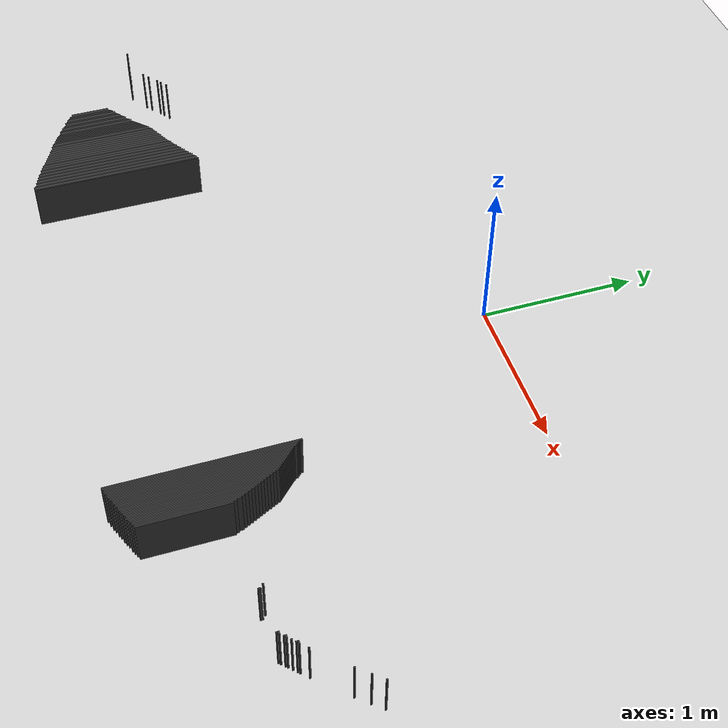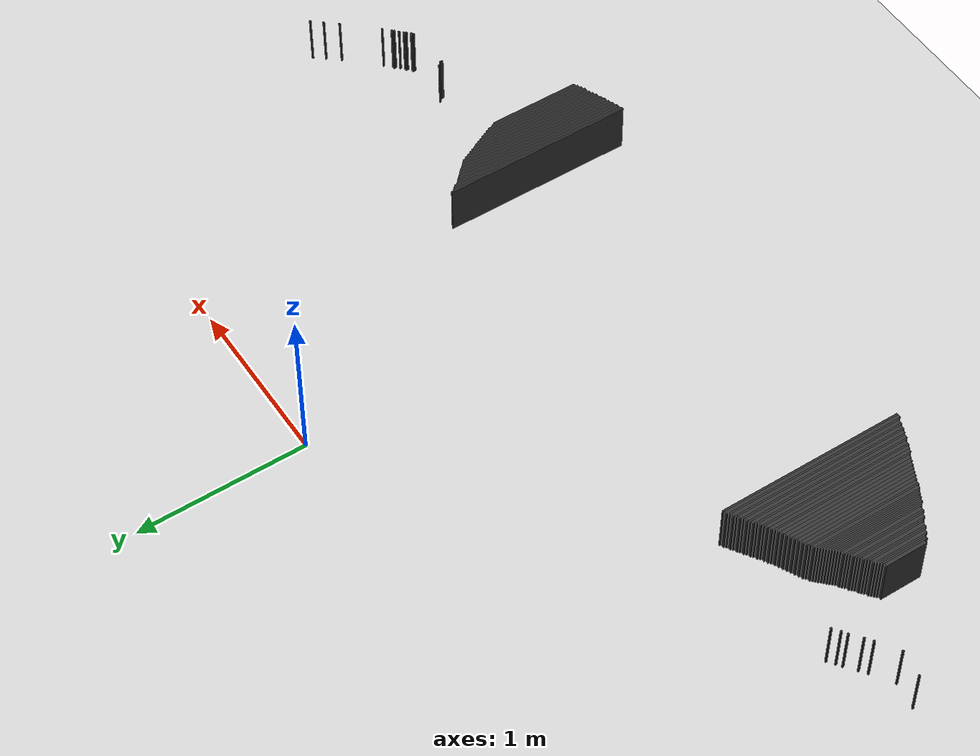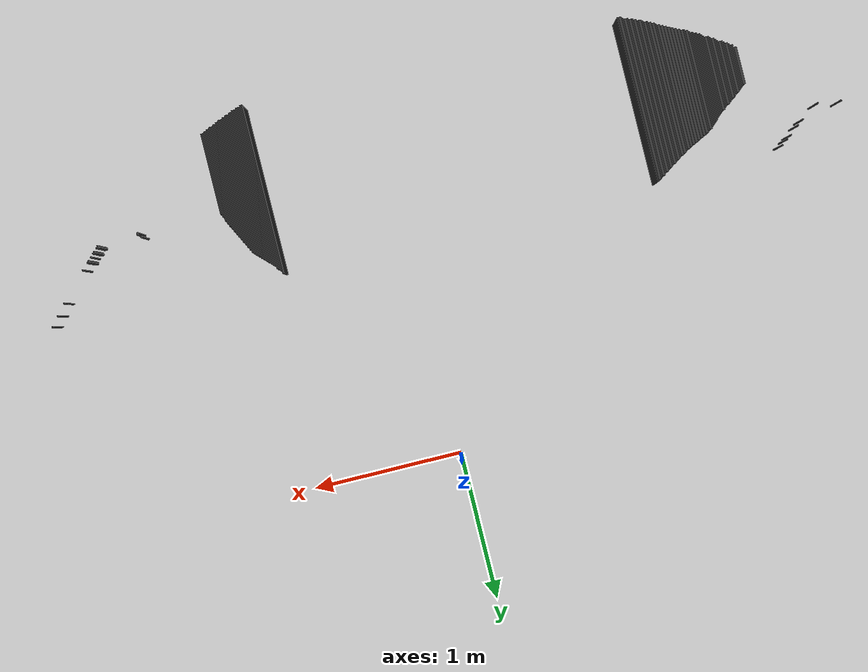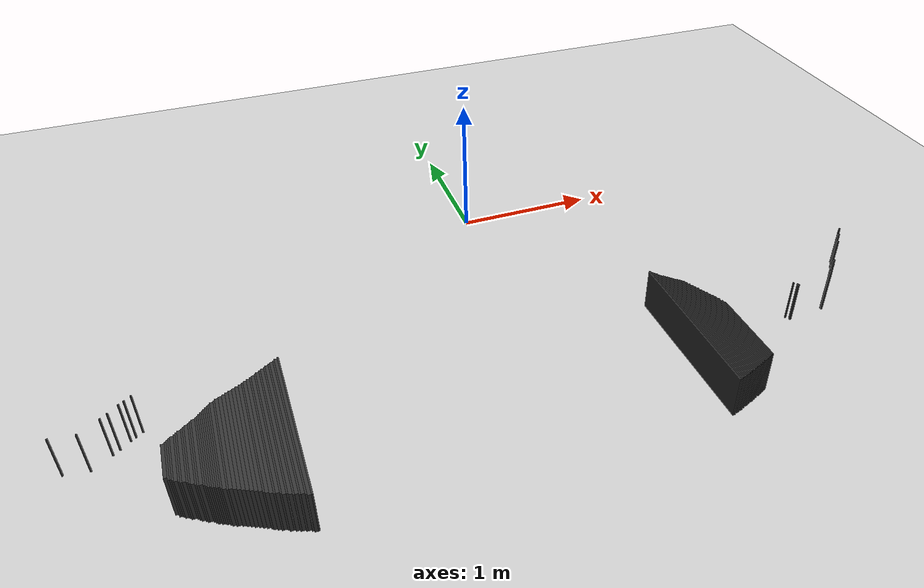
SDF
<sdf version="1.7">
 <world name="mapa_mundo">
  <model name="ground_plane">
   <static>true</static>
   <link name="link">
    <collision name="collision">
     <geometry><plane><normal>0 0 1</normal><size>10 10</size></plane></geometry>
     <surface><friction><ode><mu>100</mu><mu2>50</mu2></ode></friction></surface>
    </collision>
    <visual name="visual">
     <geometry><plane><normal>0 0 1</normal><size>10 10</size></plane></geometry>
     <material>
      <ambient>0.8 0.8 0.8 1</ambient>
      <diffuse>0.8 0.8 0.8 1</diffuse>
      <specular>0.8 0.8 0.8 1</specular>
     </material>
    </visual>
   </link>
  </model>
  <model name="wall_999">
   <static>true</static>
   <link name="link">
    <collision name="collision"><geometry><box><size>0.01 1.1 0.3</size></box></geometry></collision>
    <visual name="visual">
     <geometry><box><size>0.01 1.1 0.3</size></box></geometry>
     <material><ambient>0.2 0.2 0.2 1</ambient><diffuse>0.2 0.2 0.2 1</diffuse></material>
    </visual>
    <pose>-1.675 -1.97 0.15 0 0 0</pose>
   </link>
  </model>
  <model name="wall_1000">
   <static>true</static>
   <link name="link">
    <collision name="collision"><geometry><box><size>0.02 1.09 0.3</size></box></geometry></collision>
    <visual name="visual">
     <geometry><box><size>0.02 1.09 0.3</size></box></geometry>
     <material><ambient>0.2 0.2 0.2 1</ambient><diffuse>0.2 0.2 0.2 1</diffuse></material>
    </visual>
    <pose>-1.69 -1.975 0.15 0 0 0</pose>
   </link>
  </model>
  <model name="wall_1001">
   <static>true</static>
   <link name="link">
    <collision name="collision">
     <geometry><box><size>0.01 1.1300000000000001 0.3</size></box></geometry>
    </collision>
    <visual name="visual">
     <geometry><box><size>0.01 1.1300000000000001 0.3</size></box></geometry>
     <material><ambient>0.2 0.2 0.2 1</ambient><diffuse>0.2 0.2 0.2 1</diffuse></material>
    </visual>
    <pose>0.835 -1.995 0.15 0 0 0</pose>
   </link>
  </model>
  <model name="wall_1002">
   <static>true</static>
   <link name="link">
    <collision name="collision"><geometry><box><size>0.01 1.07 0.3</size></box></geometry></collision>
    <visual name="visual">
     <geometry><box><size>0.01 1.07 0.3</size></box></geometry>
     <material><ambient>0.2 0.2 0.2 1</ambient><diffuse>0.2 0.2 0.2 1</diffuse></material>
    </visual>
    <pose>-1.705 -1.975 0.15 0 0 0</pose>
   </link>
  </model>
  <model name="wall_1003">
   <static>true</static>
   <link name="link">
    <collision name="collision"><geometry><box><size>0.01 0.01 0.3</size></box></geometry></collision>
    <visual name="visual">
     <geometry><box><size>0.01 0.01 0.3</size></box></geometry>
     <material><ambient>0.2 0.2 0.2 1</ambient><diffuse>0.2 0.2 0.2 1</diffuse></material>
    </visual>
    <pose>-2.515 -1.455 0.15 0 0 0</pose>
   </link>
  </model>
  <model name="wall_1004">
   <static>true</static>
   <link name="link">
    <collision name="collision"><geometry><box><size>0.02 1.05 0.3</size></box></geometry></collision>
    <visual name="visual">
     <geometry><box><size>0.02 1.05 0.3</size></box></geometry>
     <material><ambient>0.2 0.2 0.2 1</ambient><diffuse>0.2 0.2 0.2 1</diffuse></material>
    </visual>
    <pose>-1.72 -1.975 0.15 0 0 0</pose>
   </link>
  </model>
  <model name="wall_1005">
   <static>true</static>
   <link name="link">
    <collision name="collision"><geometry><box><size>0.01 1.11 0.3</size></box></geometry></collision>
    <visual name="visual">
     <geometry><box><size>0.01 1.11 0.3</size></box></geometry>
     <material><ambient>0.2 0.2 0.2 1</ambient><diffuse>0.2 0.2 0.2 1</diffuse></material>
    </visual>
    <pose>0.845 -2.005 0.15 0 0 0</pose>
   </link>
  </model>
  <model name="wall_1006">
   <static>true</static>
   <link name="link">
    <collision name="collision"><geometry><box><size>0.01 0.01 0.3</size></box></geometry></collision>
    <visual name="visual">
     <geometry><box><size>0.01 0.01 0.3</size></box></geometry>
     <material><ambient>0.2 0.2 0.2 1</ambient><diffuse>0.2 0.2 0.2 1</diffuse></material>
    </visual>
    <pose>2.375 -1.455 0.15 0 0 0</pose>
   </link>
  </model>
  <model name="wall_1007">
   <static>true</static>
   <link name="link">
    <collision name="collision"><geometry><box><size>0.01 1.04 0.3</size></box></geometry></collision>
    <visual name="visual">
     <geometry><box><size>0.01 1.04 0.3</size></box></geometry>
     <material><ambient>0.2 0.2 0.2 1</ambient><diffuse>0.2 0.2 0.2 1</diffuse></material>
    </visual>
    <pose>-1.735 -1.98 0.15 0 0 0</pose>
   </link>
  </model>
  <model name="wall_1008">
   <static>true</static>
   <link name="link">
    <collision name="collision"><geometry><box><size>0.01 1.09 0.3</size></box></geometry></collision>
    <visual name="visual">
     <geometry><box><size>0.01 1.09 0.3</size></box></geometry>
     <material><ambient>0.2 0.2 0.2 1</ambient><diffuse>0.2 0.2 0.2 1</diffuse></material>
    </visual>
    <pose>0.855 -2.005 0.15 0 0 0</pose>
   </link>
  </model>
  <model name="wall_1009">
   <static>true</static>
   <link name="link">
    <collision name="collision"><geometry><box><size>0.02 1.02 0.3</size></box></geometry></collision>
    <visual name="visual">
     <geometry><box><size>0.02 1.02 0.3</size></box></geometry>
     <material><ambient>0.2 0.2 0.2 1</ambient><diffuse>0.2 0.2 0.2 1</diffuse></material>
    </visual>
    <pose>-1.75 -1.98 0.15 0 0 0</pose>
   </link>
  </model>
  <model name="wall_1010">
   <static>true</static>
   <link name="link">
    <collision name="collision"><geometry><box><size>0.01 1.08 0.3</size></box></geometry></collision>
    <visual name="visual">
     <geometry><box><size>0.01 1.08 0.3</size></box></geometry>
     <material><ambient>0.2 0.2 0.2 1</ambient><diffuse>0.2 0.2 0.2 1</diffuse></material>
    </visual>
    <pose>0.865 -2.0100000000000002 0.15 0 0 0</pose>
   </link>
  </model>
  <model name="wall_1011">
   <static>true</static>
   <link name="link">
    <collision name="collision"><geometry><box><size>0.01 0.01 0.3</size></box></geometry></collision>
    <visual name="visual">
     <geometry><box><size>0.01 0.01 0.3</size></box></geometry>
     <material><ambient>0.2 0.2 0.2 1</ambient><diffuse>0.2 0.2 0.2 1</diffuse></material>
    </visual>
    <pose>-2.555 -1.485 0.15 0 0 0</pose>
   </link>
  </model>
  <model name="wall_1012">
   <static>true</static>
   <link name="link">
    <collision name="collision"><geometry><box><size>0.01 1.01 0.3</size></box></geometry></collision>
    <visual name="visual">
     <geometry><box><size>0.01 1.01 0.3</size></box></geometry>
     <material><ambient>0.2 0.2 0.2 1</ambient><diffuse>0.2 0.2 0.2 1</diffuse></material>
    </visual>
    <pose>-1.7650000000000001 -1.985 0.15 0 0 0</pose>
   </link>
  </model>
  <model name="wall_1013">
   <static>true</static>
   <link name="link">
    <collision name="collision"><geometry><box><size>0.02 0.99 0.3</size></box></geometry></collision>
    <visual name="visual">
     <geometry><box><size>0.02 0.99 0.3</size></box></geometry>
     <material><ambient>0.2 0.2 0.2 1</ambient><diffuse>0.2 0.2 0.2 1</diffuse></material>
    </visual>
    <pose>-1.78 -1.985 0.15 0 0 0</pose>
   </link>
  </model>
  <model name="wall_1014">
   <static>true</static>
   <link name="link">
    <collision name="collision"><geometry><box><size>0.01 1.06 0.3</size></box></geometry></collision>
    <visual name="visual">
     <geometry><box><size>0.01 1.06 0.3</size></box></geometry>
     <material><ambient>0.2 0.2 0.2 1</ambient><diffuse>0.2 0.2 0.2 1</diffuse></material>
    </visual>
    <pose>0.875 -2.02 0.15 0 0 0</pose>
   </link>
  </model>
  <model name="wall_1015">
   <static>true</static>
   <link name="link">
    <collision name="collision"><geometry><box><size>0.01 0.01 0.3</size></box></geometry></collision>
    <visual name="visual">
     <geometry><box><size>0.01 0.01 0.3</size></box></geometry>
     <material><ambient>0.2 0.2 0.2 1</ambient><diffuse>0.2 0.2 0.2 1</diffuse></material>
    </visual>
    <pose>-2.585 -1.5050000000000001 0.15 0 0 0</pose>
   </link>
  </model>
  <model name="wall_1016">
   <static>true</static>
   <link name="link">
    <collision name="collision"><geometry><box><size>0.01 0.97 0.3</size></box></geometry></collision>
    <visual name="visual">
     <geometry><box><size>0.01 0.97 0.3</size></box></geometry>
     <material><ambient>0.2 0.2 0.2 1</ambient><diffuse>0.2 0.2 0.2 1</diffuse></material>
    </visual>
    <pose>-1.795 -1.985 0.15 0 0 0</pose>
   </link>
  </model>
  <model name="wall_1017">
   <static>true</static>
   <link name="link">
    <collision name="collision"><geometry><box><size>0.01 1.04 0.3</size></box></geometry></collision>
    <visual name="visual">
     <geometry><box><size>0.01 1.04 0.3</size></box></geometry>
     <material><ambient>0.2 0.2 0.2 1</ambient><diffuse>0.2 0.2 0.2 1</diffuse></material>
    </visual>
    <pose>0.885 -2.02 0.15 0 0 0</pose>
   </link>
  </model>
  <model name="wall_1018">
   <static>true</static>
   <link name="link">
    <collision name="collision"><geometry><box><size>0.02 0.96 0.3</size></box></geometry></collision>
    <visual name="visual">
     <geometry><box><size>0.02 0.96 0.3</size></box></geometry>
     <material><ambient>0.2 0.2 0.2 1</ambient><diffuse>0.2 0.2 0.2 1</diffuse></material>
    </visual>
    <pose>-1.81 -1.99 0.15 0 0 0</pose>
   </link>
  </model>
  <model name="wall_1019">
   <static>true</static>
   <link name="link">
    <collision name="collision"><geometry><box><size>0.01 1.03 0.3</size></box></geometry></collision>
    <visual name="visual">
     <geometry><box><size>0.01 1.03 0.3</size></box></geometry>
     <material><ambient>0.2 0.2 0.2 1</ambient><diffuse>0.2 0.2 0.2 1</diffuse></material>
    </visual>
    <pose>0.895 -2.025 0.15 0 0 0</pose>
   </link>
  </model>
  <model name="wall_1020">
   <static>true</static>
   <link name="link">
    <collision name="collision"><geometry><box><size>0.01 0.01 0.3</size></box></geometry></collision>
    <visual name="visual">
     <geometry><box><size>0.01 0.01 0.3</size></box></geometry>
     <material><ambient>0.2 0.2 0.2 1</ambient><diffuse>0.2 0.2 0.2 1</diffuse></material>
    </visual>
    <pose>2.325 -1.5150000000000001 0.15 0 0 0</pose>
   </link>
  </model>
  <model name="wall_1021">
   <static>true</static>
   <link name="link">
    <collision name="collision">
     <geometry><box><size>0.01 0.9400000000000001 0.3</size></box></geometry>
    </collision>
    <visual name="visual">
     <geometry><box><size>0.01 0.9400000000000001 0.3</size></box></geometry>
     <material><ambient>0.2 0.2 0.2 1</ambient><diffuse>0.2 0.2 0.2 1</diffuse></material>
    </visual>
    <pose>-1.825 -1.99 0.15 0 0 0</pose>
   </link>
  </model>
  <model name="wall_1022">
   <static>true</static>
   <link name="link">
    <collision name="collision"><geometry><box><size>0.01 1.02 0.3</size></box></geometry></collision>
    <visual name="visual">
     <geometry><box><size>0.01 1.02 0.3</size></box></geometry>
     <material><ambient>0.2 0.2 0.2 1</ambient><diffuse>0.2 0.2 0.2 1</diffuse></material>
    </visual>
    <pose>0.905 -2.0300000000000002 0.15 0 0 0</pose>
   </link>
  </model>
  <model name="wall_1023">
   <static>true</static>
   <link name="link">
    <collision name="collision"><geometry><box><size>0.02 0.92 0.3</size></box></geometry></collision>
    <visual name="visual">
     <geometry><box><size>0.02 0.92 0.3</size></box></geometry>
     <material><ambient>0.2 0.2 0.2 1</ambient><diffuse>0.2 0.2 0.2 1</diffuse></material>
    </visual>
    <pose>-1.84 -1.99 0.15 0 0 0</pose>
   </link>
  </model>
  <model name="wall_1024">
   <static>true</static>
   <link name="link">
    <collision name="collision"><geometry><box><size>0.01 1.0 0.3</size></box></geometry></collision>
    <visual name="visual">
     <geometry><box><size>0.01 1.0 0.3</size></box></geometry>
     <material><ambient>0.2 0.2 0.2 1</ambient><diffuse>0.2 0.2 0.2 1</diffuse></material>
    </visual>
    <pose>0.915 -2.0300000000000002 0.15 0 0 0</pose>
   </link>
  </model>
  <model name="wall_1025">
   <static>true</static>
   <link name="link">
    <collision name="collision"><geometry><box><size>0.01 0.91 0.3</size></box></geometry></collision>
    <visual name="visual">
     <geometry><box><size>0.01 0.91 0.3</size></box></geometry>
     <material><ambient>0.2 0.2 0.2 1</ambient><diffuse>0.2 0.2 0.2 1</diffuse></material>
    </visual>
    <pose>-1.855 -1.995 0.15 0 0 0</pose>
   </link>
  </model>
  <model name="wall_1026">
   <static>true</static>
   <link name="link">
    <collision name="collision"><geometry><box><size>0.01 0.99 0.3</size></box></geometry></collision>
    <visual name="visual">
     <geometry><box><size>0.01 0.99 0.3</size></box></geometry>
     <material><ambient>0.2 0.2 0.2 1</ambient><diffuse>0.2 0.2 0.2 1</diffuse></material>
    </visual>
    <pose>0.925 -2.035 0.15 0 0 0</pose>
   </link>
  </model>
  <model name="wall_1027">
   <static>true</static>
   <link name="link">
    <collision name="collision"><geometry><box><size>0.01 0.01 0.3</size></box></geometry></collision>
    <visual name="visual">
     <geometry><box><size>0.01 0.01 0.3</size></box></geometry>
     <material><ambient>0.2 0.2 0.2 1</ambient><diffuse>0.2 0.2 0.2 1</diffuse></material>
    </visual>
    <pose>-2.645 -1.555 0.15 0 0 0</pose>
   </link>
  </model>
  <model name="wall_1028">
   <static>true</static>
   <link name="link">
    <collision name="collision"><geometry><box><size>0.02 0.89 0.3</size></box></geometry></collision>
    <visual name="visual">
     <geometry><box><size>0.02 0.89 0.3</size></box></geometry>
     <material><ambient>0.2 0.2 0.2 1</ambient><diffuse>0.2 0.2 0.2 1</diffuse></material>
    </visual>
    <pose>-1.87 -1.995 0.15 0 0 0</pose>
   </link>
  </model>
  <model name="wall_1029">
   <static>true</static>
   <link name="link">
    <collision name="collision"><geometry><box><size>0.01 0.97 0.3</size></box></geometry></collision>
    <visual name="visual">
     <geometry><box><size>0.01 0.97 0.3</size></box></geometry>
     <material><ambient>0.2 0.2 0.2 1</ambient><diffuse>0.2 0.2 0.2 1</diffuse></material>
    </visual>
    <pose>0.935 -2.035 0.15 0 0 0</pose>
   </link>
  </model>
  <model name="wall_1030">
   <static>true</static>
   <link name="link">
    <collision name="collision"><geometry><box><size>0.02 0.87 0.3</size></box></geometry></collision>
    <visual name="visual">
     <geometry><box><size>0.02 0.87 0.3</size></box></geometry>
     <material><ambient>0.2 0.2 0.2 1</ambient><diffuse>0.2 0.2 0.2 1</diffuse></material>
    </visual>
    <pose>-1.8900000000000001 -1.995 0.15 0 0 0</pose>
   </link>
  </model>
  <model name="wall_1031">
   <static>true</static>
   <link name="link">
    <collision name="collision"><geometry><box><size>0.01 0.96 0.3</size></box></geometry></collision>
    <visual name="visual">
     <geometry><box><size>0.01 0.96 0.3</size></box></geometry>
     <material><ambient>0.2 0.2 0.2 1</ambient><diffuse>0.2 0.2 0.2 1</diffuse></material>
    </visual>
    <pose>0.9450000000000001 -2.04 0.15 0 0 0</pose>
   </link>
  </model>
  <model name="wall_1032">
   <static>true</static>
   <link name="link">
    <collision name="collision"><geometry><box><size>0.01 0.85 0.3</size></box></geometry></collision>
    <visual name="visual">
     <geometry><box><size>0.01 0.85 0.3</size></box></geometry>
     <material><ambient>0.2 0.2 0.2 1</ambient><diffuse>0.2 0.2 0.2 1</diffuse></material>
    </visual>
    <pose>-1.905 -1.995 0.15 0 0 0</pose>
   </link>
  </model>
  <model name="wall_1033">
   <static>true</static>
   <link name="link">
    <collision name="collision">
     <geometry><box><size>0.01 0.9500000000000001 0.3</size></box></geometry>
    </collision>
    <visual name="visual">
     <geometry><box><size>0.01 0.9500000000000001 0.3</size></box></geometry>
     <material><ambient>0.2 0.2 0.2 1</ambient><diffuse>0.2 0.2 0.2 1</diffuse></material>
    </visual>
    <pose>0.9550000000000001 -2.045 0.15 0 0 0</pose>
   </link>
  </model>
  <model name="wall_1034">
   <static>true</static>
   <link name="link">
    <collision name="collision"><geometry><box><size>0.01 0.01 0.3</size></box></geometry></collision>
    <visual name="visual">
     <geometry><box><size>0.01 0.01 0.3</size></box></geometry>
     <material><ambient>0.2 0.2 0.2 1</ambient><diffuse>0.2 0.2 0.2 1</diffuse></material>
    </visual>
    <pose>-2.685 -1.585 0.15 0 0 0</pose>
   </link>
  </model>
  <model name="wall_1035">
   <static>true</static>
   <link name="link">
    <collision name="collision">
     <geometry><box><size>0.02 0.8300000000000001 0.3</size></box></geometry>
    </collision>
    <visual name="visual">
     <geometry><box><size>0.02 0.8300000000000001 0.3</size></box></geometry>
     <material><ambient>0.2 0.2 0.2 1</ambient><diffuse>0.2 0.2 0.2 1</diffuse></material>
    </visual>
    <pose>-1.92 -1.995 0.15 0 0 0</pose>
   </link>
  </model>
  <model name="wall_1036">
   <static>true</static>
   <link name="link">
    <collision name="collision"><geometry><box><size>0.01 0.93 0.3</size></box></geometry></collision>
    <visual name="visual">
     <geometry><box><size>0.01 0.93 0.3</size></box></geometry>
     <material><ambient>0.2 0.2 0.2 1</ambient><diffuse>0.2 0.2 0.2 1</diffuse></material>
    </visual>
    <pose>0.965 -2.045 0.15 0 0 0</pose>
   </link>
  </model>
  <model name="wall_1037">
   <static>true</static>
   <link name="link">
    <collision name="collision"><geometry><box><size>0.01 0.01 0.3</size></box></geometry></collision>
    <visual name="visual">
     <geometry><box><size>0.01 0.01 0.3</size></box></geometry>
     <material><ambient>0.2 0.2 0.2 1</ambient><diffuse>0.2 0.2 0.2 1</diffuse></material>
    </visual>
    <pose>2.265 -1.585 0.15 0 0 0</pose>
   </link>
  </model>
  <model name="wall_1038">
   <static>true</static>
   <link name="link">
    <collision name="collision"><geometry><box><size>0.02 0.81 0.3</size></box></geometry></collision>
    <visual name="visual">
     <geometry><box><size>0.02 0.81 0.3</size></box></geometry>
     <material><ambient>0.2 0.2 0.2 1</ambient><diffuse>0.2 0.2 0.2 1</diffuse></material>
    </visual>
    <pose>-1.94 -1.995 0.15 0 0 0</pose>
   </link>
  </model>
  <model name="wall_1039">
   <static>true</static>
   <link name="link">
    <collision name="collision"><geometry><box><size>0.01 0.92 0.3</size></box></geometry></collision>
    <visual name="visual">
     <geometry><box><size>0.01 0.92 0.3</size></box></geometry>
     <material><ambient>0.2 0.2 0.2 1</ambient><diffuse>0.2 0.2 0.2 1</diffuse></material>
    </visual>
    <pose>0.975 -2.05 0.15 0 0 0</pose>
   </link>
  </model>
  <model name="wall_1040">
   <static>true</static>
   <link name="link">
    <collision name="collision"><geometry><box><size>0.02 0.79 0.3</size></box></geometry></collision>
    <visual name="visual">
     <geometry><box><size>0.02 0.79 0.3</size></box></geometry>
     <material><ambient>0.2 0.2 0.2 1</ambient><diffuse>0.2 0.2 0.2 1</diffuse></material>
    </visual>
    <pose>-1.96 -1.995 0.15 0 0 0</pose>
   </link>
  </model>
  <model name="wall_1041">
   <static>true</static>
   <link name="link">
    <collision name="collision"><geometry><box><size>0.01 0.9 0.3</size></box></geometry></collision>
    <visual name="visual">
     <geometry><box><size>0.01 0.9 0.3</size></box></geometry>
     <material><ambient>0.2 0.2 0.2 1</ambient><diffuse>0.2 0.2 0.2 1</diffuse></material>
    </visual>
    <pose>0.985 -2.05 0.15 0 0 0</pose>
   </link>
  </model>
  <model name="wall_1042">
   <static>true</static>
   <link name="link">
    <collision name="collision"><geometry><box><size>0.02 0.77 0.3</size></box></geometry></collision>
    <visual name="visual">
     <geometry><box><size>0.02 0.77 0.3</size></box></geometry>
     <material><ambient>0.2 0.2 0.2 1</ambient><diffuse>0.2 0.2 0.2 1</diffuse></material>
    </visual>
    <pose>-1.98 -1.995 0.15 0 0 0</pose>
   </link>
  </model>
  <model name="wall_1043">
   <static>true</static>
   <link name="link">
    <collision name="collision"><geometry><box><size>0.01 0.89 0.3</size></box></geometry></collision>
    <visual name="visual">
     <geometry><box><size>0.01 0.89 0.3</size></box></geometry>
     <material><ambient>0.2 0.2 0.2 1</ambient><diffuse>0.2 0.2 0.2 1</diffuse></material>
    </visual>
    <pose>0.995 -2.055 0.15 0 0 0</pose>
   </link>
  </model>
  <model name="wall_1044">
   <static>true</static>
   <link name="link">
    <collision name="collision"><geometry><box><size>0.02 0.75 0.3</size></box></geometry></collision>
    <visual name="visual">
     <geometry><box><size>0.02 0.75 0.3</size></box></geometry>
     <material><ambient>0.2 0.2 0.2 1</ambient><diffuse>0.2 0.2 0.2 1</diffuse></material>
    </visual>
    <pose>-2.0 -1.995 0.15 0 0 0</pose>
   </link>
  </model>
  <model name="wall_1045">
   <static>true</static>
   <link name="link">
    <collision name="collision"><geometry><box><size>0.02 0.73 0.3</size></box></geometry></collision>
    <visual name="visual">
     <geometry><box><size>0.02 0.73 0.3</size></box></geometry>
     <material><ambient>0.2 0.2 0.2 1</ambient><diffuse>0.2 0.2 0.2 1</diffuse></material>
    </visual>
    <pose>-2.02 -1.995 0.15 0 0 0</pose>
   </link>
  </model>
  <model name="wall_1046">
   <static>true</static>
   <link name="link">
    <collision name="collision"><geometry><box><size>0.01 0.87 0.3</size></box></geometry></collision>
    <visual name="visual">
     <geometry><box><size>0.01 0.87 0.3</size></box></geometry>
     <material><ambient>0.2 0.2 0.2 1</ambient><diffuse>0.2 0.2 0.2 1</diffuse></material>
    </visual>
    <pose>1.0050000000000001 -2.065 0.15 0 0 0</pose>
   </link>
  </model>
  <model name="wall_1047">
   <static>true</static>
   <link name="link">
    <collision name="collision"><geometry><box><size>0.01 0.01 0.3</size></box></geometry></collision>
    <visual name="visual">
     <geometry><box><size>0.01 0.01 0.3</size></box></geometry>
     <material><ambient>0.2 0.2 0.2 1</ambient><diffuse>0.2 0.2 0.2 1</diffuse></material>
    </visual>
    <pose>-2.955 -1.645 0.15 0 0 0</pose>
   </link>
  </model>
  <model name="wall_1048">
   <static>true</static>
   <link name="link">
    <collision name="collision"><geometry><box><size>0.02 0.71 0.3</size></box></geometry></collision>
    <visual name="visual">
     <geometry><box><size>0.02 0.71 0.3</size></box></geometry>
     <material><ambient>0.2 0.2 0.2 1</ambient><diffuse>0.2 0.2 0.2 1</diffuse></material>
    </visual>
    <pose>-2.04 -1.995 0.15 0 0 0</pose>
   </link>
  </model>
  <model name="wall_1049">
   <static>true</static>
   <link name="link">
    <collision name="collision">
     <geometry><box><size>0.02 0.6900000000000001 0.3</size></box></geometry>
    </collision>
    <visual name="visual">
     <geometry><box><size>0.02 0.6900000000000001 0.3</size></box></geometry>
     <material><ambient>0.2 0.2 0.2 1</ambient><diffuse>0.2 0.2 0.2 1</diffuse></material>
    </visual>
    <pose>-2.06 -1.995 0.15 0 0 0</pose>
   </link>
  </model>
  <model name="wall_1050">
   <static>true</static>
   <link name="link">
    <collision name="collision"><geometry><box><size>0.01 0.84 0.3</size></box></geometry></collision>
    <visual name="visual">
     <geometry><box><size>0.01 0.84 0.3</size></box></geometry>
     <material><ambient>0.2 0.2 0.2 1</ambient><diffuse>0.2 0.2 0.2 1</diffuse></material>
    </visual>
    <pose>1.0150000000000001 -2.07 0.15 0 0 0</pose>
   </link>
  </model>
  <model name="wall_1051">
   <static>true</static>
   <link name="link">
    <collision name="collision"><geometry><box><size>0.01 0.01 0.3</size></box></geometry></collision>
    <visual name="visual">
     <geometry><box><size>0.01 0.01 0.3</size></box></geometry>
     <material><ambient>0.2 0.2 0.2 1</ambient><diffuse>0.2 0.2 0.2 1</diffuse></material>
    </visual>
    <pose>-2.805 -1.665 0.15 0 0 0</pose>
   </link>
  </model>
  <model name="wall_1052">
   <static>true</static>
   <link name="link">
    <collision name="collision"><geometry><box><size>0.01 0.68 0.3</size></box></geometry></collision>
    <visual name="visual">
     <geometry><box><size>0.01 0.68 0.3</size></box></geometry>
     <material><ambient>0.2 0.2 0.2 1</ambient><diffuse>0.2 0.2 0.2 1</diffuse></material>
    </visual>
    <pose>-2.075 -2.0 0.15 0 0 0</pose>
   </link>
  </model>
  <model name="wall_1053">
   <static>true</static>
   <link name="link">
    <collision name="collision"><geometry><box><size>0.02 0.66 0.3</size></box></geometry></collision>
    <visual name="visual">
     <geometry><box><size>0.02 0.66 0.3</size></box></geometry>
     <material><ambient>0.2 0.2 0.2 1</ambient><diffuse>0.2 0.2 0.2 1</diffuse></material>
    </visual>
    <pose>-2.09 -2.0 0.15 0 0 0</pose>
   </link>
  </model>
  <model name="wall_1054">
   <static>true</static>
   <link name="link">
    <collision name="collision">
     <geometry><box><size>0.01 0.8200000000000001 0.3</size></box></geometry>
    </collision>
    <visual name="visual">
     <geometry><box><size>0.01 0.8200000000000001 0.3</size></box></geometry>
     <material><ambient>0.2 0.2 0.2 1</ambient><diffuse>0.2 0.2 0.2 1</diffuse></material>
    </visual>
    <pose>1.025 -2.08 0.15 0 0 0</pose>
   </link>
  </model>
  <model name="wall_1055">
   <static>true</static>
   <link name="link">
    <collision name="collision"><geometry><box><size>0.01 0.64 0.3</size></box></geometry></collision>
    <visual name="visual">
     <geometry><box><size>0.01 0.64 0.3</size></box></geometry>
     <material><ambient>0.2 0.2 0.2 1</ambient><diffuse>0.2 0.2 0.2 1</diffuse></material>
    </visual>
    <pose>-2.105 -2.0 0.15 0 0 0</pose>
   </link>
  </model>
  <model name="wall_1056">
   <static>true</static>
   <link name="link">
    <collision name="collision"><geometry><box><size>0.01 0.62 0.3</size></box></geometry></collision>
    <visual name="visual">
     <geometry><box><size>0.01 0.62 0.3</size></box></geometry>
     <material><ambient>0.2 0.2 0.2 1</ambient><diffuse>0.2 0.2 0.2 1</diffuse></material>
    </visual>
    <pose>-2.115 -2.0 0.15 0 0 0</pose>
   </link>
  </model>
  <model name="wall_1057">
   <static>true</static>
   <link name="link">
    <collision name="collision"><geometry><box><size>0.01 0.79 0.3</size></box></geometry></collision>
    <visual name="visual">
     <geometry><box><size>0.01 0.79 0.3</size></box></geometry>
     <material><ambient>0.2 0.2 0.2 1</ambient><diffuse>0.2 0.2 0.2 1</diffuse></material>
    </visual>
    <pose>1.035 -2.085 0.15 0 0 0</pose>
   </link>
  </model>
  <model name="wall_1058">
   <static>true</static>
   <link name="link">
    <collision name="collision"><geometry><box><size>0.01 0.61 0.3</size></box></geometry></collision>
    <visual name="visual">
     <geometry><box><size>0.01 0.61 0.3</size></box></geometry>
     <material><ambient>0.2 0.2 0.2 1</ambient><diffuse>0.2 0.2 0.2 1</diffuse></material>
    </visual>
    <pose>-2.125 -2.005 0.15 0 0 0</pose>
   </link>
  </model>
  <model name="wall_1059">
   <static>true</static>
   <link name="link">
    <collision name="collision"><geometry><box><size>0.01 0.59 0.3</size></box></geometry></collision>
    <visual name="visual">
     <geometry><box><size>0.01 0.59 0.3</size></box></geometry>
     <material><ambient>0.2 0.2 0.2 1</ambient><diffuse>0.2 0.2 0.2 1</diffuse></material>
    </visual>
    <pose>-2.1350000000000002 -2.005 0.15 0 0 0</pose>
   </link>
  </model>
  <model name="wall_1060">
   <static>true</static>
   <link name="link">
    <collision name="collision"><geometry><box><size>0.01 0.77 0.3</size></box></geometry></collision>
    <visual name="visual">
     <geometry><box><size>0.01 0.77 0.3</size></box></geometry>
     <material><ambient>0.2 0.2 0.2 1</ambient><diffuse>0.2 0.2 0.2 1</diffuse></material>
    </visual>
    <pose>1.045 -2.095 0.15 0 0 0</pose>
   </link>
  </model>
  <model name="wall_1061">
   <static>true</static>
   <link name="link">
    <collision name="collision"><geometry><box><size>0.01 0.58 0.3</size></box></geometry></collision>
    <visual name="visual">
     <geometry><box><size>0.01 0.58 0.3</size></box></geometry>
     <material><ambient>0.2 0.2 0.2 1</ambient><diffuse>0.2 0.2 0.2 1</diffuse></material>
    </visual>
    <pose>-2.145 -2.0100000000000002 0.15 0 0 0</pose>
   </link>
  </model>
  <model name="wall_1062">
   <static>true</static>
   <link name="link">
    <collision name="collision"><geometry><box><size>0.01 0.56 0.3</size></box></geometry></collision>
    <visual name="visual">
     <geometry><box><size>0.01 0.56 0.3</size></box></geometry>
     <material><ambient>0.2 0.2 0.2 1</ambient><diffuse>0.2 0.2 0.2 1</diffuse></material>
    </visual>
    <pose>-2.1550000000000002 -2.0100000000000002 0.15 0 0 0</pose>
   </link>
  </model>
  <model name="wall_1063">
   <static>true</static>
   <link name="link">
    <collision name="collision"><geometry><box><size>0.01 0.74 0.3</size></box></geometry></collision>
    <visual name="visual">
     <geometry><box><size>0.01 0.74 0.3</size></box></geometry>
     <material><ambient>0.2 0.2 0.2 1</ambient><diffuse>0.2 0.2 0.2 1</diffuse></material>
    </visual>
    <pose>1.055 -2.1 0.15 0 0 0</pose>
   </link>
  </model>
  <model name="wall_1064">
   <static>true</static>
   <link name="link">
    <collision name="collision"><geometry><box><size>0.01 0.55 0.3</size></box></geometry></collision>
    <visual name="visual">
     <geometry><box><size>0.01 0.55 0.3</size></box></geometry>
     <material><ambient>0.2 0.2 0.2 1</ambient><diffuse>0.2 0.2 0.2 1</diffuse></material>
    </visual>
    <pose>-2.165 -2.015 0.15 0 0 0</pose>
   </link>
  </model>
  <model name="wall_1065">
   <static>true</static>
   <link name="link">
    <collision name="collision"><geometry><box><size>0.01 0.53 0.3</size></box></geometry></collision>
    <visual name="visual">
     <geometry><box><size>0.01 0.53 0.3</size></box></geometry>
     <material><ambient>0.2 0.2 0.2 1</ambient><diffuse>0.2 0.2 0.2 1</diffuse></material>
    </visual>
    <pose>-2.1750000000000003 -2.015 0.15 0 0 0</pose>
   </link>
  </model>
  <model name="wall_1066">
   <static>true</static>
   <link name="link">
    <collision name="collision"><geometry><box><size>0.01 0.72 0.3</size></box></geometry></collision>
    <visual name="visual">
     <geometry><box><size>0.01 0.72 0.3</size></box></geometry>
     <material><ambient>0.2 0.2 0.2 1</ambient><diffuse>0.2 0.2 0.2 1</diffuse></material>
    </visual>
    <pose>1.065 -2.11 0.15 0 0 0</pose>
   </link>
  </model>
  <model name="wall_1067">
   <static>true</static>
   <link name="link">
    <collision name="collision"><geometry><box><size>0.01 0.51 0.3</size></box></geometry></collision>
    <visual name="visual">
     <geometry><box><size>0.01 0.51 0.3</size></box></geometry>
     <material><ambient>0.2 0.2 0.2 1</ambient><diffuse>0.2 0.2 0.2 1</diffuse></material>
    </visual>
    <pose>-2.185 -2.015 0.15 0 0 0</pose>
   </link>
  </model>
  <model name="wall_1068">
   <static>true</static>
   <link name="link">
    <collision name="collision"><geometry><box><size>0.01 0.01 0.3</size></box></geometry></collision>
    <visual name="visual">
     <geometry><box><size>0.01 0.01 0.3</size></box></geometry>
     <material><ambient>0.2 0.2 0.2 1</ambient><diffuse>0.2 0.2 0.2 1</diffuse></material>
    </visual>
    <pose>2.095 -1.7650000000000001 0.15 0 0 0</pose>
   </link>
  </model>
  <model name="wall_1069">
   <static>true</static>
   <link name="link">
    <collision name="collision"><geometry><box><size>0.02 0.49 0.3</size></box></geometry></collision>
    <visual name="visual">
     <geometry><box><size>0.02 0.49 0.3</size></box></geometry>
     <material><ambient>0.2 0.2 0.2 1</ambient><diffuse>0.2 0.2 0.2 1</diffuse></material>
    </visual>
    <pose>-2.2 -2.015 0.15 0 0 0</pose>
   </link>
  </model>
  <model name="wall_1070">
   <static>true</static>
   <link name="link">
    <collision name="collision">
     <geometry><box><size>0.01 0.7000000000000001 0.3</size></box></geometry>
    </collision>
    <visual name="visual">
     <geometry><box><size>0.01 0.7000000000000001 0.3</size></box></geometry>
     <material><ambient>0.2 0.2 0.2 1</ambient><diffuse>0.2 0.2 0.2 1</diffuse></material>
    </visual>
    <pose>1.075 -2.12 0.15 0 0 0</pose>
   </link>
  </model>
  <model name="wall_1071">
   <static>true</static>
   <link name="link">
    <collision name="collision"><geometry><box><size>0.01 0.48 0.3</size></box></geometry></collision>
    <visual name="visual">
     <geometry><box><size>0.01 0.48 0.3</size></box></geometry>
     <material><ambient>0.2 0.2 0.2 1</ambient><diffuse>0.2 0.2 0.2 1</diffuse></material>
    </visual>
    <pose>-2.215 -2.02 0.15 0 0 0</pose>
   </link>
  </model>
  <model name="wall_1072">
   <static>true</static>
   <link name="link">
    <collision name="collision"><geometry><box><size>0.01 0.46 0.3</size></box></geometry></collision>
    <visual name="visual">
     <geometry><box><size>0.01 0.46 0.3</size></box></geometry>
     <material><ambient>0.2 0.2 0.2 1</ambient><diffuse>0.2 0.2 0.2 1</diffuse></material>
    </visual>
    <pose>-2.225 -2.02 0.15 0 0 0</pose>
   </link>
  </model>
  <model name="wall_1073">
   <static>true</static>
   <link name="link">
    <collision name="collision"><geometry><box><size>0.01 0.67 0.3</size></box></geometry></collision>
    <visual name="visual">
     <geometry><box><size>0.01 0.67 0.3</size></box></geometry>
     <material><ambient>0.2 0.2 0.2 1</ambient><diffuse>0.2 0.2 0.2 1</diffuse></material>
    </visual>
    <pose>1.085 -2.125 0.15 0 0 0</pose>
   </link>
  </model>
  <model name="wall_1074">
   <static>true</static>
   <link name="link">
    <collision name="collision"><geometry><box><size>0.02 0.44 0.3</size></box></geometry></collision>
    <visual name="visual">
     <geometry><box><size>0.02 0.44 0.3</size></box></geometry>
     <material><ambient>0.2 0.2 0.2 1</ambient><diffuse>0.2 0.2 0.2 1</diffuse></material>
    </visual>
    <pose>-2.24 -2.02 0.15 0 0 0</pose>
   </link>
  </model>
  <model name="wall_1075">
   <static>true</static>
   <link name="link">
    <collision name="collision"><geometry><box><size>0.02 0.01 0.3</size></box></geometry></collision>
    <visual name="visual">
     <geometry><box><size>0.02 0.01 0.3</size></box></geometry>
     <material><ambient>0.2 0.2 0.2 1</ambient><diffuse>0.2 0.2 0.2 1</diffuse></material>
    </visual>
    <pose>2.05 -1.805 0.15 0 0 0</pose>
   </link>
  </model>
  <model name="wall_1076">
   <static>true</static>
   <link name="link">
    <collision name="collision"><geometry><box><size>0.01 0.42 0.3</size></box></geometry></collision>
    <visual name="visual">
     <geometry><box><size>0.01 0.42 0.3</size></box></geometry>
     <material><ambient>0.2 0.2 0.2 1</ambient><diffuse>0.2 0.2 0.2 1</diffuse></material>
    </visual>
    <pose>-2.255 -2.02 0.15 0 0 0</pose>
   </link>
  </model>
  <model name="wall_1077">
   <static>true</static>
   <link name="link">
    <collision name="collision"><geometry><box><size>0.01 0.65 0.3</size></box></geometry></collision>
    <visual name="visual">
     <geometry><box><size>0.01 0.65 0.3</size></box></geometry>
     <material><ambient>0.2 0.2 0.2 1</ambient><diffuse>0.2 0.2 0.2 1</diffuse></material>
    </visual>
    <pose>1.095 -2.1350000000000002 0.15 0 0 0</pose>
   </link>
  </model>
  <model name="wall_1078">
   <static>true</static>
   <link name="link">
    <collision name="collision"><geometry><box><size>0.01 0.01 0.3</size></box></geometry></collision>
    <visual name="visual">
     <geometry><box><size>0.01 0.01 0.3</size></box></geometry>
     <material><ambient>0.2 0.2 0.2 1</ambient><diffuse>0.2 0.2 0.2 1</diffuse></material>
    </visual>
    <pose>2.045 -1.815 0.15 0 0 0</pose>
   </link>
  </model>
  <model name="wall_1079">
   <static>true</static>
   <link name="link">
    <collision name="collision"><geometry><box><size>0.01 0.4 0.3</size></box></geometry></collision>
    <visual name="visual">
     <geometry><box><size>0.01 0.4 0.3</size></box></geometry>
     <material><ambient>0.2 0.2 0.2 1</ambient><diffuse>0.2 0.2 0.2 1</diffuse></material>
    </visual>
    <pose>-2.265 -2.02 0.15 0 0 0</pose>
   </link>
  </model>
  <model name="wall_1080">
   <static>true</static>
   <link name="link">
    <collision name="collision"><geometry><box><size>0.02 0.38 0.3</size></box></geometry></collision>
    <visual name="visual">
     <geometry><box><size>0.02 0.38 0.3</size></box></geometry>
     <material><ambient>0.2 0.2 0.2 1</ambient><diffuse>0.2 0.2 0.2 1</diffuse></material>
    </visual>
    <pose>-2.2800000000000002 -2.02 0.15 0 0 0</pose>
   </link>
  </model>
  <model name="wall_1081">
   <static>true</static>
   <link name="link">
    <collision name="collision"><geometry><box><size>0.01 0.62 0.3</size></box></geometry></collision>
    <visual name="visual">
     <geometry><box><size>0.01 0.62 0.3</size></box></geometry>
     <material><ambient>0.2 0.2 0.2 1</ambient><diffuse>0.2 0.2 0.2 1</diffuse></material>
    </visual>
    <pose>1.105 -2.14 0.15 0 0 0</pose>
   </link>
  </model>
  <model name="wall_1082">
   <static>true</static>
   <link name="link">
    <collision name="collision"><geometry><box><size>0.01 0.01 0.3</size></box></geometry></collision>
    <visual name="visual">
     <geometry><box><size>0.01 0.01 0.3</size></box></geometry>
     <material><ambient>0.2 0.2 0.2 1</ambient><diffuse>0.2 0.2 0.2 1</diffuse></material>
    </visual>
    <pose>2.025 -1.835 0.15 0 0 0</pose>
   </link>
  </model>
  <model name="wall_1083">
   <static>true</static>
   <link name="link">
    <collision name="collision"><geometry><box><size>0.01 0.37 0.3</size></box></geometry></collision>
    <visual name="visual">
     <geometry><box><size>0.01 0.37 0.3</size></box></geometry>
     <material><ambient>0.2 0.2 0.2 1</ambient><diffuse>0.2 0.2 0.2 1</diffuse></material>
    </visual>
    <pose>-2.295 -2.025 0.15 0 0 0</pose>
   </link>
  </model>
  <model name="wall_1084">
   <static>true</static>
   <link name="link">
    <collision name="collision">
     <geometry><box><size>0.01 0.35000000000000003 0.3</size></box></geometry>
    </collision>
    <visual name="visual">
     <geometry><box><size>0.01 0.35000000000000003 0.3</size></box></geometry>
     <material><ambient>0.2 0.2 0.2 1</ambient><diffuse>0.2 0.2 0.2 1</diffuse></material>
    </visual>
    <pose>-2.305 -2.025 0.15 0 0 0</pose>
   </link>
  </model>
  <model name="wall_1085">
   <static>true</static>
   <link name="link">
    <collision name="collision"><geometry><box><size>0.01 0.6 0.3</size></box></geometry></collision>
    <visual name="visual">
     <geometry><box><size>0.01 0.6 0.3</size></box></geometry>
     <material><ambient>0.2 0.2 0.2 1</ambient><diffuse>0.2 0.2 0.2 1</diffuse></material>
    </visual>
    <pose>1.115 -2.15 0.15 0 0 0</pose>
   </link>
  </model>
  <model name="wall_1086">
   <static>true</static>
   <link name="link">
    <collision name="collision"><geometry><box><size>0.02 0.01 0.3</size></box></geometry></collision>
    <visual name="visual">
     <geometry><box><size>0.02 0.01 0.3</size></box></geometry>
     <material><ambient>0.2 0.2 0.2 1</ambient><diffuse>0.2 0.2 0.2 1</diffuse></material>
    </visual>
    <pose>2.0 -1.855 0.15 0 0 0</pose>
   </link>
  </model>
  <model name="wall_1087">
   <static>true</static>
   <link name="link">
    <collision name="collision"><geometry><box><size>0.02 0.33 0.3</size></box></geometry></collision>
    <visual name="visual">
     <geometry><box><size>0.02 0.33 0.3</size></box></geometry>
     <material><ambient>0.2 0.2 0.2 1</ambient><diffuse>0.2 0.2 0.2 1</diffuse></material>
    </visual>
    <pose>-2.32 -2.025 0.15 0 0 0</pose>
   </link>
  </model>
  <model name="wall_1088">
   <static>true</static>
   <link name="link">
    <collision name="collision"><geometry><box><size>0.01 0.01 0.3</size></box></geometry></collision>
    <visual name="visual">
     <geometry><box><size>0.01 0.01 0.3</size></box></geometry>
     <material><ambient>0.2 0.2 0.2 1</ambient><diffuse>0.2 0.2 0.2 1</diffuse></material>
    </visual>
    <pose>1.995 -1.865 0.15 0 0 0</pose>
   </link>
  </model>
  <model name="wall_1089">
   <static>true</static>
   <link name="link">
    <collision name="collision"><geometry><box><size>0.01 0.31 0.3</size></box></geometry></collision>
    <visual name="visual">
     <geometry><box><size>0.01 0.31 0.3</size></box></geometry>
     <material><ambient>0.2 0.2 0.2 1</ambient><diffuse>0.2 0.2 0.2 1</diffuse></material>
    </visual>
    <pose>-2.335 -2.025 0.15 0 0 0</pose>
   </link>
  </model>
  <model name="wall_1090">
   <static>true</static>
   <link name="link">
    <collision name="collision"><geometry><box><size>0.01 0.29 0.3</size></box></geometry></collision>
    <visual name="visual">
     <geometry><box><size>0.01 0.29 0.3</size></box></geometry>
     <material><ambient>0.2 0.2 0.2 1</ambient><diffuse>0.2 0.2 0.2 1</diffuse></material>
    </visual>
    <pose>-2.345 -2.025 0.15 0 0 0</pose>
   </link>
  </model>
  <model name="wall_1091">
   <static>true</static>
   <link name="link">
    <collision name="collision"><geometry><box><size>0.01 0.56 0.3</size></box></geometry></collision>
    <visual name="visual">
     <geometry><box><size>0.01 0.56 0.3</size></box></geometry>
     <material><ambient>0.2 0.2 0.2 1</ambient><diffuse>0.2 0.2 0.2 1</diffuse></material>
    </visual>
    <pose>1.125 -2.16 0.15 0 0 0</pose>
   </link>
  </model>
  <model name="wall_1092">
   <static>true</static>
   <link name="link">
    <collision name="collision"><geometry><box><size>0.01 0.01 0.3</size></box></geometry></collision>
    <visual name="visual">
     <geometry><box><size>0.01 0.01 0.3</size></box></geometry>
     <material><ambient>0.2 0.2 0.2 1</ambient><diffuse>0.2 0.2 0.2 1</diffuse></material>
    </visual>
    <pose>1.675 -1.885 0.15 0 0 0</pose>
   </link>
  </model>
  <model name="wall_1093">
   <static>true</static>
   <link name="link">
    <collision name="collision"><geometry><box><size>0.02 0.01 0.3</size></box></geometry></collision>
    <visual name="visual">
     <geometry><box><size>0.02 0.01 0.3</size></box></geometry>
     <material><ambient>0.2 0.2 0.2 1</ambient><diffuse>0.2 0.2 0.2 1</diffuse></material>
    </visual>
    <pose>1.97 -1.885 0.15 0 0 0</pose>
   </link>
  </model>
  <model name="wall_1094">
   <static>true</static>
   <link name="link">
    <collision name="collision"><geometry><box><size>0.01 0.28 0.3</size></box></geometry></collision>
    <visual name="visual">
     <geometry><box><size>0.01 0.28 0.3</size></box></geometry>
     <material><ambient>0.2 0.2 0.2 1</ambient><diffuse>0.2 0.2 0.2 1</diffuse></material>
    </visual>
    <pose>-2.355 -2.0300000000000002 0.15 0 0 0</pose>
   </link>
  </model>
  <model name="wall_1095">
   <static>true</static>
   <link name="link">
    <collision name="collision"><geometry><box><size>0.01 0.01 0.3</size></box></geometry></collision>
    <visual name="visual">
     <geometry><box><size>0.01 0.01 0.3</size></box></geometry>
     <material><ambient>0.2 0.2 0.2 1</ambient><diffuse>0.2 0.2 0.2 1</diffuse></material>
    </visual>
    <pose>1.965 -1.895 0.15 0 0 0</pose>
   </link>
  </model>
  <model name="wall_1096">
   <static>true</static>
   <link name="link">
    <collision name="collision"><geometry><box><size>0.02 0.25 0.3</size></box></geometry></collision>
    <visual name="visual">
     <geometry><box><size>0.02 0.25 0.3</size></box></geometry>
     <material><ambient>0.2 0.2 0.2 1</ambient><diffuse>0.2 0.2 0.2 1</diffuse></material>
    </visual>
    <pose>-2.37 -2.025 0.15 0 0 0</pose>
   </link>
  </model>
  <model name="wall_1097">
   <static>true</static>
   <link name="link">
    <collision name="collision"><geometry><box><size>0.01 0.54 0.3</size></box></geometry></collision>
    <visual name="visual">
     <geometry><box><size>0.01 0.54 0.3</size></box></geometry>
     <material><ambient>0.2 0.2 0.2 1</ambient><diffuse>0.2 0.2 0.2 1</diffuse></material>
    </visual>
    <pose>1.135 -2.17 0.15 0 0 0</pose>
   </link>
  </model>
  <model name="wall_1098">
   <static>true</static>
   <link name="link">
    <collision name="collision"><geometry><box><size>0.01 0.02 0.3</size></box></geometry></collision>
    <visual name="visual">
     <geometry><box><size>0.01 0.02 0.3</size></box></geometry>
     <material><ambient>0.2 0.2 0.2 1</ambient><diffuse>0.2 0.2 0.2 1</diffuse></material>
    </visual>
    <pose>1.695 -1.9100000000000001 0.15 0 0 0</pose>
   </link>
  </model>
 </world>
</sdf>
